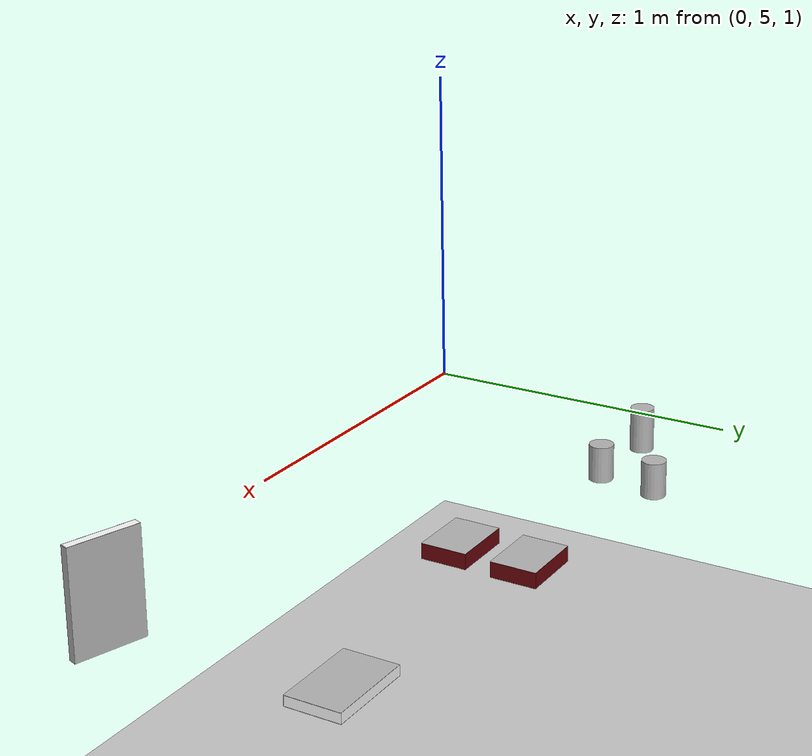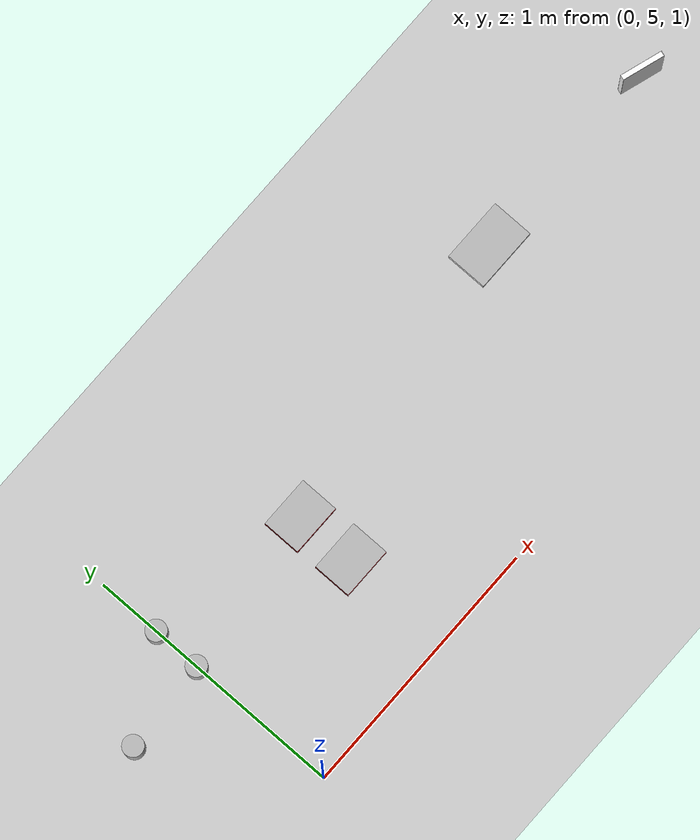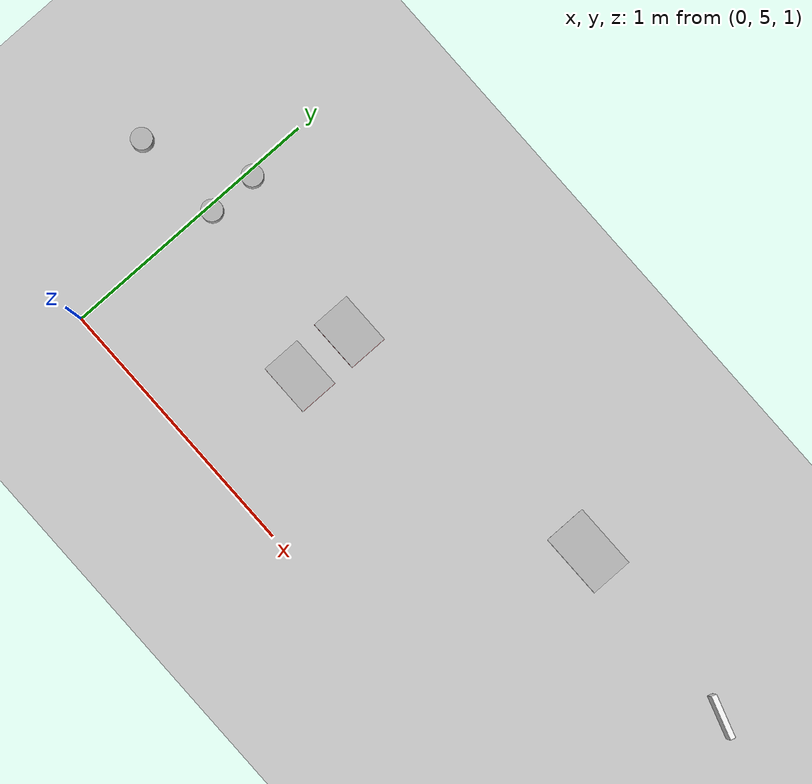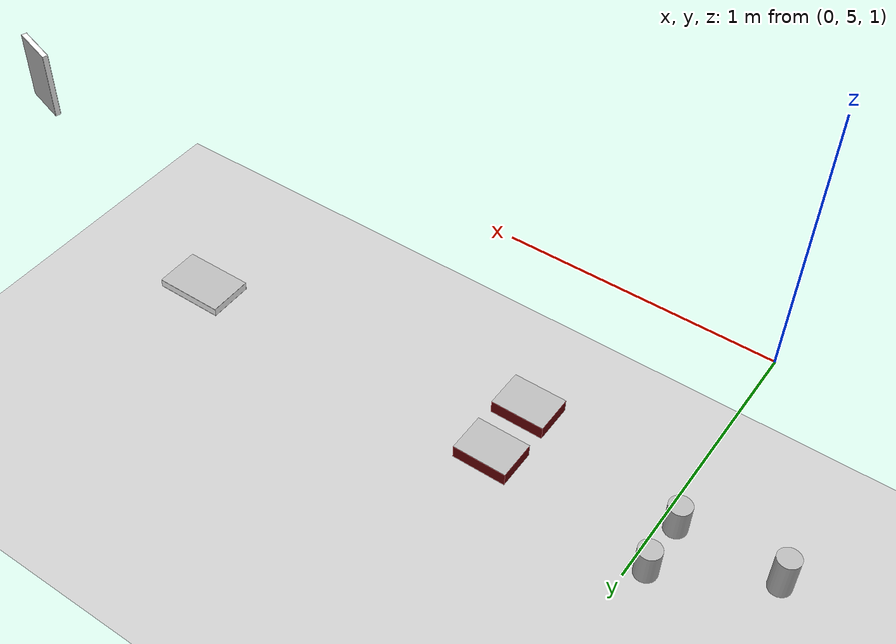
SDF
<sdf version="1.6">
 <world name="default">
  <model name="ground_plane">
   <static>1</static>
   <link name="link">
    <collision name="collision">
     <geometry><plane><normal>0 0 1</normal><size>100 100</size></plane></geometry>
     <surface>
      <contact><collide_bitmask>65535</collide_bitmask></contact>
      <friction><ode><mu>100</mu><mu2>50</mu2></ode></friction>
     </surface>
    </collision>
    <visual name="visual">
     <cast_shadows>0</cast_shadows>
     <geometry><plane><normal>0 0 1</normal><size>100 100</size></plane></geometry>
     <material>
      <script><uri>file://media/materials/scripts/gazebo.material</uri><name>Gazebo/Grey</name></script>
     </material>
    </visual>
   </link>
  </model>
  <model name="book_5_0">
   <link name="cover">
    <pose>0 -0.000108 0.01 0 -0 0</pose>
    <visual name="visual">
     <geometry><box><size>0.245 0.16 0.02</size></box></geometry>
     <material>
      <script>
       <uri>model://book_5/materials/scripts</uri>
       <uri>model://book_5/materials/textures</uri>
       <name>book_5</name>
      </script>
     </material>
    </visual>
    <collision name="collision"><geometry><box><size>0.245 0.16 0.02</size></box></geometry></collision>
   </link>
   <link name="page">
    <pose>0 0.000608 0.01 0 -0 0</pose>
    <visual name="visual">
     <geometry><box><size>0.24502 0.15862 0.018</size></box></geometry>
     <material>
      <lighting>1</lighting>
      <ambient>1 1 1 1</ambient>
      <diffuse>1 1 1 1</diffuse>
      <specular>0.01 0.01 0.01 1</specular>
      <emissive>0 0 0 1</emissive>
      <shader type="vertex"><normal_map>__default__</normal_map></shader>
     </material>
    </visual>
    <collision name="collision"><geometry><box><size>0.245 0.16 0.018</size></box></geometry></collision>
   </link>
   <static>1</static>
   <pose>2.467 5.74925 1.50502 -0.038094 -1.55499 1.29861</pose>
  </model>
  <model name="book_17">
   <link name="cover">
    <pose>0 -0.000108 0.015405 0 -0 0</pose>
    <visual name="visual">
     <geometry><box><size>0.245 0.16 0.03</size></box></geometry>
     <material>
      <script>
       <uri>model://book_17/materials/scripts</uri>
       <uri>model://book_17/materials/textures</uri>
       <name>book_17</name>
      </script>
     </material>
    </visual>
    <collision name="collision"><geometry><box><size>0.245 0.16 0.03</size></box></geometry></collision>
   </link>
   <link name="page">
    <pose>0 0.000608 0.015405 0 -0 0</pose>
    <visual name="visual">
     <geometry><box><size>0.24502 0.15862 0.028</size></box></geometry>
     <material>
      <lighting>1</lighting>
      <ambient>1 1 1 1</ambient>
      <diffuse>1 1 1 1</diffuse>
      <specular>0.01 0.01 0.01 1</specular>
      <emissive>0 0 0 1</emissive>
      <shader type="vertex"><normal_map>__default__</normal_map></shader>
     </material>
    </visual>
    <collision name="collision"><geometry><box><size>0.245 0.16 0.03</size></box></geometry></collision>
   </link>
   <static>1</static>
   <pose>1.75855 5.78441 0.935806 0 -0 0</pose>
  </model>
  <model name="cocacola_2">
   <static>0</static>
   <link name="link">
    <inertial>
     <mass>0.25</mass>
     <inertia><ixx>0</ixx><ixy>0</ixy><ixz>0</ixz><iyy>0</iyy><iyz>0</iyz><izz>0</izz></inertia>
    </inertial>
    <collision name="collision">
     <pose>0 0 0.075 -3.14159 -0 0</pose>
     <geometry><cylinder><radius>0.04</radius><length>0.15</length></cylinder></geometry>
    </collision>
    <visual name="visual">
     <pose>0 0 0.075 -3.14159 -0 0</pose>
     <geometry><cylinder><radius>0.04</radius><length>0.15</length></cylinder></geometry>
     <material>
      <script>
       <uri>model://cocacola/material/scripts</uri>
       <uri>model://cocacola/material/textures</uri>
       <name>Custom/cocacola</name>
      </script>
     </material>
    </visual>
    <velocity_decay><linear>0</linear><angular>0</angular></velocity_decay>
   </link>
   <pose>-0.340781 5.57129 0.720997 0.000151 -5.6e-05 0.000241</pose>
  </model>
  <model name="coffee_box">
   <link name="link_0">
    <visual name="visual">
     <pose>0 0 0.06 0 -0 0</pose>
     <geometry><cylinder><radius>0.04</radius><length>0.12</length></cylinder></geometry>
     <material>
      <script>
       <uri>model://coffee_box/materials/scripts</uri>
       <uri>model://coffee_box/materials/textures</uri>
       <name>coffee_pat</name>
      </script>
     </material>
    </visual>
    <collision name="collision">
     <geometry><cylinder><radius>0.04</radius><length>0.12</length></cylinder></geometry>
    </collision>
   </link>
   <static>1</static>
   <pose>0.008986 5.77552 0.734768 0 -0 0</pose>
  </model>
  <model name="coffee_box_1">
   <link name="link_0">
    <visual name="visual">
     <pose>0 0 0.06 0 -0 0</pose>
     <geometry><cylinder><radius>0.04</radius><length>0.12</length></cylinder></geometry>
     <material>
      <script>
       <uri>model://coffee_box/materials/scripts</uri>
       <uri>model://coffee_box/materials/textures</uri>
       <name>coffee_pat</name>
      </script>
     </material>
    </visual>
    <collision name="collision">
     <geometry><cylinder><radius>0.04</radius><length>0.12</length></cylinder></geometry>
    </collision>
   </link>
   <static>1</static>
   <pose>0.007857 5.58998 0.751181 0 -0 0</pose>
  </model>
  <model name="biscuit_box_0">
   <link name="link">
    <pose>0 0 0.025 0 -0 0</pose>
    <visual name="visual">
     <geometry><box><size>0.2 0.15 0.05</size></box></geometry>
     <material>
      <ambient>0.423 0.019 0.035 1</ambient>
      <diffuse>0.423 0.019 0.035 1</diffuse>
      <specular>0.01 0.01 0.01 1</specular>
      <emissive>0 0 0 1</emissive>
     </material>
    </visual>
    <collision name="collision"><geometry><box><size>0.1 0.1 0.15</size></box></geometry></collision>
   </link>
   <link name="link_1">
    <pose>0 0 0.05 0 -0 0</pose>
    <visual name="visual">
     <geometry><box><size>0.2 0.15 0.001</size></box></geometry>
     <material>
      <script>
       <uri>model://biscuit_box/materials/scripts</uri>
       <uri>model://biscuit_box/materials/textures</uri>
       <name>biscuit_pat</name>
      </script>
     </material>
    </visual>
    <collision name="collision"><geometry><box><size>0.1 0.1 0.15</size></box></geometry></collision>
   </link>
   <static>1</static>
   <pose>0.637856 5.66971 0.724504 0 -0 0</pose>
  </model>
  <model name="biscuit_box_1">
   <link name="link">
    <pose>0 0 0.025 0 -0 0</pose>
    <visual name="visual">
     <geometry><box><size>0.2 0.15 0.05</size></box></geometry>
     <material>
      <ambient>0.423 0.019 0.035 1</ambient>
      <diffuse>0.423 0.019 0.035 1</diffuse>
      <specular>0.01 0.01 0.01 1</specular>
      <emissive>0 0 0 1</emissive>
     </material>
    </visual>
    <collision name="collision"><geometry><box><size>0.1 0.1 0.15</size></box></geometry></collision>
   </link>
   <link name="link_1">
    <pose>0 0 0.05 0 -0 0</pose>
    <visual name="visual">
     <geometry><box><size>0.2 0.15 0.001</size></box></geometry>
     <material>
      <script>
       <uri>model://biscuit_box/materials/scripts</uri>
       <uri>model://biscuit_box/materials/textures</uri>
       <name>biscuit_pat</name>
      </script>
     </material>
    </visual>
    <collision name="collision"><geometry><box><size>0.1 0.1 0.15</size></box></geometry></collision>
   </link>
   <static>1</static>
   <pose>0.639718 5.43867 0.728719 0 -0 0</pose>
  </model>
 </world>
</sdf>
